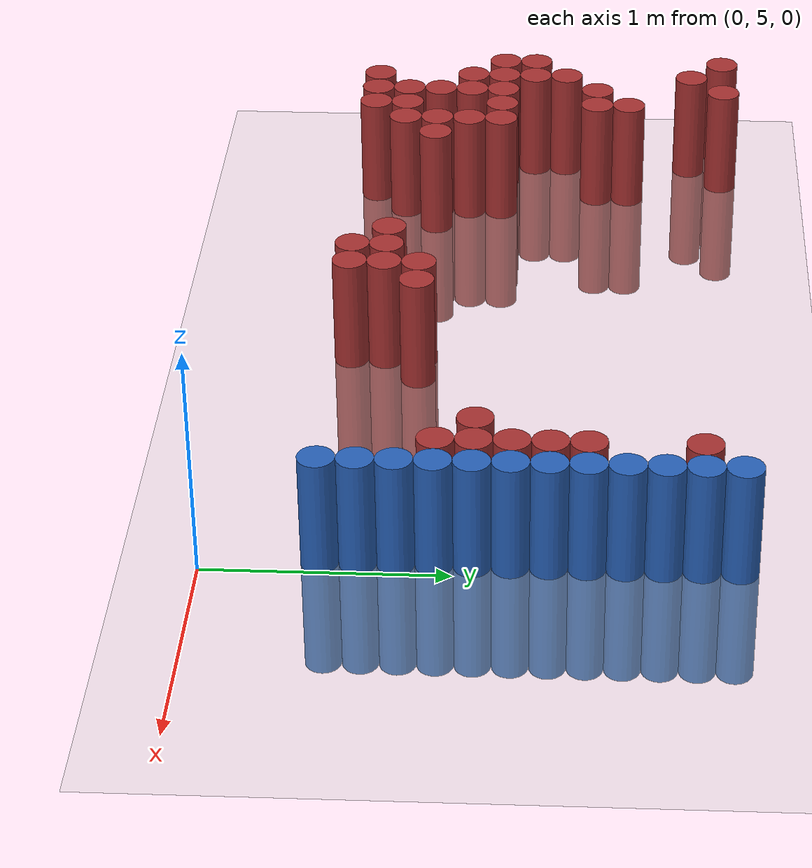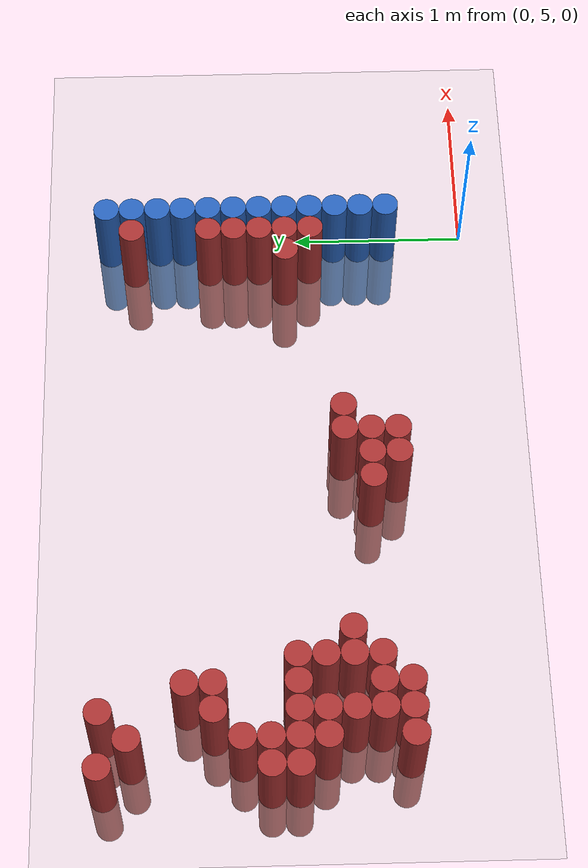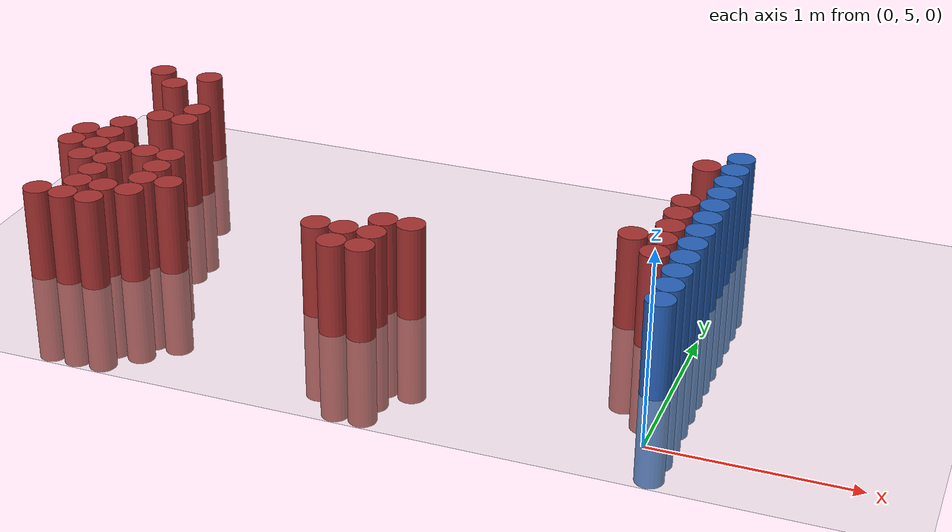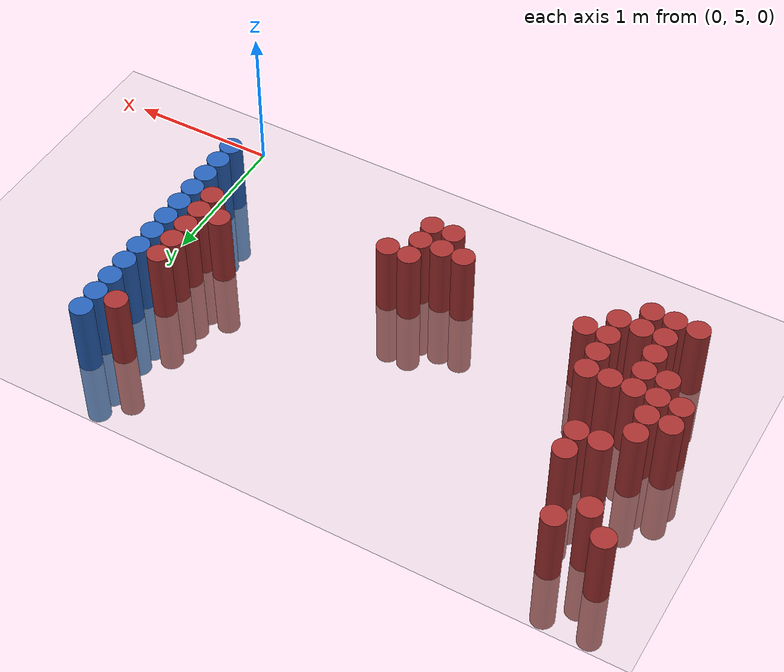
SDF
<sdf version="1.6">
 <world name="default">
  <model name="ground_plane">
   <static>1</static>
   <link name="link">
    <collision name="collision">
     <geometry><plane><normal>0 0 1</normal><size>100 100</size></plane></geometry>
     <surface><friction><ode><mu>100</mu><mu2>50</mu2></ode></friction></surface>
    </collision>
    <visual name="visual">
     <cast_shadows>0</cast_shadows>
     <geometry><plane><normal>0 0 1</normal><size>100 100</size></plane></geometry>
     <material>
      <script><uri>file://media/materials/scripts/gazebo.material</uri><name>Gazebo/Grey</name></script>
     </material>
    </visual>
   </link>
  </model>
  <model name="unit_cylinder_153">
   <static>1</static>
   <pose>-3.525000 6.075000 0.000000 0.000000 0.000000 0.000000</pose>
   <link name="link">
    <inertial>
     <mass>1</mass>
     <inertia><ixx>0.145833</ixx><ixy>0</ixy><ixz>0</ixz><iyy>0.145833</iyy><iyz>0</iyz><izz>0.125</izz></inertia>
    </inertial>
    <collision name="collision">
     <geometry><cylinder><radius>0.075000</radius><length>1</length></cylinder></geometry>
    </collision>
    <visual name="visual">
     <geometry><cylinder><radius>0.075000</radius><length>1</length></cylinder></geometry>
     <material>
      <ambient>0.648000 0.192000 0.192000 1</ambient>
      <diffuse>0.648000 0.192000 0.192000 1</diffuse>
     </material>
     <material>
      <script><name>Gazebo/Grey</name><uri>file://media/materials/scripts/gazebo.material</uri></script>
     </material>
    </visual>
   </link>
  </model>
  <model name="unit_cylinder_154">
   <static>1</static>
   <pose>-3.525000 6.225000 0.000000 0.000000 0.000000 0.000000</pose>
   <link name="link">
    <inertial>
     <mass>1</mass>
     <inertia><ixx>0.145833</ixx><ixy>0</ixy><ixz>0</ixz><iyy>0.145833</iyy><iyz>0</iyz><izz>0.125</izz></inertia>
    </inertial>
    <collision name="collision">
     <geometry><cylinder><radius>0.075000</radius><length>1</length></cylinder></geometry>
    </collision>
    <visual name="visual">
     <geometry><cylinder><radius>0.075000</radius><length>1</length></cylinder></geometry>
     <material>
      <ambient>0.648000 0.192000 0.192000 1</ambient>
      <diffuse>0.648000 0.192000 0.192000 1</diffuse>
     </material>
     <material>
      <script><name>Gazebo/Grey</name><uri>file://media/materials/scripts/gazebo.material</uri></script>
     </material>
    </visual>
   </link>
  </model>
  <model name="unit_cylinder_155">
   <static>1</static>
   <pose>-3.525000 7.125000 0.000000 0.000000 0.000000 0.000000</pose>
   <link name="link">
    <inertial>
     <mass>1</mass>
     <inertia><ixx>0.145833</ixx><ixy>0</ixy><ixz>0</ixz><iyy>0.145833</iyy><iyz>0</iyz><izz>0.125</izz></inertia>
    </inertial>
    <collision name="collision">
     <geometry><cylinder><radius>0.075000</radius><length>1</length></cylinder></geometry>
    </collision>
    <visual name="visual">
     <geometry><cylinder><radius>0.075000</radius><length>1</length></cylinder></geometry>
     <material>
      <ambient>0.648000 0.192000 0.192000 1</ambient>
      <diffuse>0.648000 0.192000 0.192000 1</diffuse>
     </material>
     <material>
      <script><name>Gazebo/Grey</name><uri>file://media/materials/scripts/gazebo.material</uri></script>
     </material>
    </visual>
   </link>
  </model>
  <model name="unit_cylinder_158">
   <static>1</static>
   <pose>-3.375000 5.475000 0.000000 0.000000 0.000000 0.000000</pose>
   <link name="link">
    <inertial>
     <mass>1</mass>
     <inertia><ixx>0.145833</ixx><ixy>0</ixy><ixz>0</ixz><iyy>0.145833</iyy><iyz>0</iyz><izz>0.125</izz></inertia>
    </inertial>
    <collision name="collision">
     <geometry><cylinder><radius>0.075000</radius><length>1</length></cylinder></geometry>
    </collision>
    <visual name="visual">
     <geometry><cylinder><radius>0.075000</radius><length>1</length></cylinder></geometry>
     <material>
      <ambient>0.648000 0.192000 0.192000 1</ambient>
      <diffuse>0.648000 0.192000 0.192000 1</diffuse>
     </material>
     <material>
      <script><name>Gazebo/Grey</name><uri>file://media/materials/scripts/gazebo.material</uri></script>
     </material>
    </visual>
   </link>
  </model>
  <model name="unit_cylinder_159">
   <static>1</static>
   <pose>-3.375000 5.925000 0.000000 0.000000 0.000000 0.000000</pose>
   <link name="link">
    <inertial>
     <mass>1</mass>
     <inertia><ixx>0.145833</ixx><ixy>0</ixy><ixz>0</ixz><iyy>0.145833</iyy><iyz>0</iyz><izz>0.125</izz></inertia>
    </inertial>
    <collision name="collision">
     <geometry><cylinder><radius>0.075000</radius><length>1</length></cylinder></geometry>
    </collision>
    <visual name="visual">
     <geometry><cylinder><radius>0.075000</radius><length>1</length></cylinder></geometry>
     <material>
      <ambient>0.648000 0.192000 0.192000 1</ambient>
      <diffuse>0.648000 0.192000 0.192000 1</diffuse>
     </material>
     <material>
      <script><name>Gazebo/Grey</name><uri>file://media/materials/scripts/gazebo.material</uri></script>
     </material>
    </visual>
   </link>
  </model>
  <model name="unit_cylinder_160">
   <static>1</static>
   <pose>-3.375000 6.075000 0.000000 0.000000 0.000000 0.000000</pose>
   <link name="link">
    <inertial>
     <mass>1</mass>
     <inertia><ixx>0.145833</ixx><ixy>0</ixy><ixz>0</ixz><iyy>0.145833</iyy><iyz>0</iyz><izz>0.125</izz></inertia>
    </inertial>
    <collision name="collision">
     <geometry><cylinder><radius>0.075000</radius><length>1</length></cylinder></geometry>
    </collision>
    <visual name="visual">
     <geometry><cylinder><radius>0.075000</radius><length>1</length></cylinder></geometry>
     <material>
      <ambient>0.648000 0.192000 0.192000 1</ambient>
      <diffuse>0.648000 0.192000 0.192000 1</diffuse>
     </material>
     <material>
      <script><name>Gazebo/Grey</name><uri>file://media/materials/scripts/gazebo.material</uri></script>
     </material>
    </visual>
   </link>
  </model>
  <model name="unit_cylinder_161">
   <static>1</static>
   <pose>-3.375000 6.225000 0.000000 0.000000 0.000000 0.000000</pose>
   <link name="link">
    <inertial>
     <mass>1</mass>
     <inertia><ixx>0.145833</ixx><ixy>0</ixy><ixz>0</ixz><iyy>0.145833</iyy><iyz>0</iyz><izz>0.125</izz></inertia>
    </inertial>
    <collision name="collision">
     <geometry><cylinder><radius>0.075000</radius><length>1</length></cylinder></geometry>
    </collision>
    <visual name="visual">
     <geometry><cylinder><radius>0.075000</radius><length>1</length></cylinder></geometry>
     <material>
      <ambient>0.648000 0.192000 0.192000 1</ambient>
      <diffuse>0.648000 0.192000 0.192000 1</diffuse>
     </material>
     <material>
      <script><name>Gazebo/Grey</name><uri>file://media/materials/scripts/gazebo.material</uri></script>
     </material>
    </visual>
   </link>
  </model>
  <model name="unit_cylinder_162">
   <static>1</static>
   <pose>-3.375000 6.375000 0.000000 0.000000 0.000000 0.000000</pose>
   <link name="link">
    <inertial>
     <mass>1</mass>
     <inertia><ixx>0.145833</ixx><ixy>0</ixy><ixz>0</ixz><iyy>0.145833</iyy><iyz>0</iyz><izz>0.125</izz></inertia>
    </inertial>
    <collision name="collision">
     <geometry><cylinder><radius>0.075000</radius><length>1</length></cylinder></geometry>
    </collision>
    <visual name="visual">
     <geometry><cylinder><radius>0.075000</radius><length>1</length></cylinder></geometry>
     <material>
      <ambient>0.648000 0.192000 0.192000 1</ambient>
      <diffuse>0.648000 0.192000 0.192000 1</diffuse>
     </material>
     <material>
      <script><name>Gazebo/Grey</name><uri>file://media/materials/scripts/gazebo.material</uri></script>
     </material>
    </visual>
   </link>
  </model>
  <model name="unit_cylinder_163">
   <static>1</static>
   <pose>-3.375000 6.975000 0.000000 0.000000 0.000000 0.000000</pose>
   <link name="link">
    <inertial>
     <mass>1</mass>
     <inertia><ixx>0.145833</ixx><ixy>0</ixy><ixz>0</ixz><iyy>0.145833</iyy><iyz>0</iyz><izz>0.125</izz></inertia>
    </inertial>
    <collision name="collision">
     <geometry><cylinder><radius>0.075000</radius><length>1</length></cylinder></geometry>
    </collision>
    <visual name="visual">
     <geometry><cylinder><radius>0.075000</radius><length>1</length></cylinder></geometry>
     <material>
      <ambient>0.648000 0.192000 0.192000 1</ambient>
      <diffuse>0.648000 0.192000 0.192000 1</diffuse>
     </material>
     <material>
      <script><name>Gazebo/Grey</name><uri>file://media/materials/scripts/gazebo.material</uri></script>
     </material>
    </visual>
   </link>
  </model>
  <model name="unit_cylinder_166">
   <static>1</static>
   <pose>-3.225000 5.475000 0.000000 0.000000 0.000000 0.000000</pose>
   <link name="link">
    <inertial>
     <mass>1</mass>
     <inertia><ixx>0.145833</ixx><ixy>0</ixy><ixz>0</ixz><iyy>0.145833</iyy><iyz>0</iyz><izz>0.125</izz></inertia>
    </inertial>
    <collision name="collision">
     <geometry><cylinder><radius>0.075000</radius><length>1</length></cylinder></geometry>
    </collision>
    <visual name="visual">
     <geometry><cylinder><radius>0.075000</radius><length>1</length></cylinder></geometry>
     <material>
      <ambient>0.648000 0.192000 0.192000 1</ambient>
      <diffuse>0.648000 0.192000 0.192000 1</diffuse>
     </material>
     <material>
      <script><name>Gazebo/Grey</name><uri>file://media/materials/scripts/gazebo.material</uri></script>
     </material>
    </visual>
   </link>
  </model>
  <model name="unit_cylinder_167">
   <static>1</static>
   <pose>-3.225000 5.625000 0.000000 0.000000 0.000000 0.000000</pose>
   <link name="link">
    <inertial>
     <mass>1</mass>
     <inertia><ixx>0.145833</ixx><ixy>0</ixy><ixz>0</ixz><iyy>0.145833</iyy><iyz>0</iyz><izz>0.125</izz></inertia>
    </inertial>
    <collision name="collision">
     <geometry><cylinder><radius>0.075000</radius><length>1</length></cylinder></geometry>
    </collision>
    <visual name="visual">
     <geometry><cylinder><radius>0.075000</radius><length>1</length></cylinder></geometry>
     <material>
      <ambient>0.648000 0.192000 0.192000 1</ambient>
      <diffuse>0.648000 0.192000 0.192000 1</diffuse>
     </material>
     <material>
      <script><name>Gazebo/Grey</name><uri>file://media/materials/scripts/gazebo.material</uri></script>
     </material>
    </visual>
   </link>
  </model>
  <model name="unit_cylinder_168">
   <static>1</static>
   <pose>-3.225000 5.775000 0.000000 0.000000 0.000000 0.000000</pose>
   <link name="link">
    <inertial>
     <mass>1</mass>
     <inertia><ixx>0.145833</ixx><ixy>0</ixy><ixz>0</ixz><iyy>0.145833</iyy><iyz>0</iyz><izz>0.125</izz></inertia>
    </inertial>
    <collision name="collision">
     <geometry><cylinder><radius>0.075000</radius><length>1</length></cylinder></geometry>
    </collision>
    <visual name="visual">
     <geometry><cylinder><radius>0.075000</radius><length>1</length></cylinder></geometry>
     <material>
      <ambient>0.648000 0.192000 0.192000 1</ambient>
      <diffuse>0.648000 0.192000 0.192000 1</diffuse>
     </material>
     <material>
      <script><name>Gazebo/Grey</name><uri>file://media/materials/scripts/gazebo.material</uri></script>
     </material>
    </visual>
   </link>
  </model>
  <model name="unit_cylinder_169">
   <static>1</static>
   <pose>-3.225000 5.925000 0.000000 0.000000 0.000000 0.000000</pose>
   <link name="link">
    <inertial>
     <mass>1</mass>
     <inertia><ixx>0.145833</ixx><ixy>0</ixy><ixz>0</ixz><iyy>0.145833</iyy><iyz>0</iyz><izz>0.125</izz></inertia>
    </inertial>
    <collision name="collision">
     <geometry><cylinder><radius>0.075000</radius><length>1</length></cylinder></geometry>
    </collision>
    <visual name="visual">
     <geometry><cylinder><radius>0.075000</radius><length>1</length></cylinder></geometry>
     <material>
      <ambient>0.648000 0.192000 0.192000 1</ambient>
      <diffuse>0.648000 0.192000 0.192000 1</diffuse>
     </material>
     <material>
      <script><name>Gazebo/Grey</name><uri>file://media/materials/scripts/gazebo.material</uri></script>
     </material>
    </visual>
   </link>
  </model>
  <model name="unit_cylinder_170">
   <static>1</static>
   <pose>-3.225000 6.075000 0.000000 0.000000 0.000000 0.000000</pose>
   <link name="link">
    <inertial>
     <mass>1</mass>
     <inertia><ixx>0.145833</ixx><ixy>0</ixy><ixz>0</ixz><iyy>0.145833</iyy><iyz>0</iyz><izz>0.125</izz></inertia>
    </inertial>
    <collision name="collision">
     <geometry><cylinder><radius>0.075000</radius><length>1</length></cylinder></geometry>
    </collision>
    <visual name="visual">
     <geometry><cylinder><radius>0.075000</radius><length>1</length></cylinder></geometry>
     <material>
      <ambient>0.648000 0.192000 0.192000 1</ambient>
      <diffuse>0.648000 0.192000 0.192000 1</diffuse>
     </material>
     <material>
      <script><name>Gazebo/Grey</name><uri>file://media/materials/scripts/gazebo.material</uri></script>
     </material>
    </visual>
   </link>
  </model>
  <model name="unit_cylinder_171">
   <static>1</static>
   <pose>-3.225000 6.525000 0.000000 0.000000 0.000000 0.000000</pose>
   <link name="link">
    <inertial>
     <mass>1</mass>
     <inertia><ixx>0.145833</ixx><ixy>0</ixy><ixz>0</ixz><iyy>0.145833</iyy><iyz>0</iyz><izz>0.125</izz></inertia>
    </inertial>
    <collision name="collision">
     <geometry><cylinder><radius>0.075000</radius><length>1</length></cylinder></geometry>
    </collision>
    <visual name="visual">
     <geometry><cylinder><radius>0.075000</radius><length>1</length></cylinder></geometry>
     <material>
      <ambient>0.648000 0.192000 0.192000 1</ambient>
      <diffuse>0.648000 0.192000 0.192000 1</diffuse>
     </material>
     <material>
      <script><name>Gazebo/Grey</name><uri>file://media/materials/scripts/gazebo.material</uri></script>
     </material>
    </visual>
   </link>
  </model>
  <model name="unit_cylinder_172">
   <static>1</static>
   <pose>-3.225000 7.125000 0.000000 0.000000 0.000000 0.000000</pose>
   <link name="link">
    <inertial>
     <mass>1</mass>
     <inertia><ixx>0.145833</ixx><ixy>0</ixy><ixz>0</ixz><iyy>0.145833</iyy><iyz>0</iyz><izz>0.125</izz></inertia>
    </inertial>
    <collision name="collision">
     <geometry><cylinder><radius>0.075000</radius><length>1</length></cylinder></geometry>
    </collision>
    <visual name="visual">
     <geometry><cylinder><radius>0.075000</radius><length>1</length></cylinder></geometry>
     <material>
      <ambient>0.648000 0.192000 0.192000 1</ambient>
      <diffuse>0.648000 0.192000 0.192000 1</diffuse>
     </material>
     <material>
      <script><name>Gazebo/Grey</name><uri>file://media/materials/scripts/gazebo.material</uri></script>
     </material>
    </visual>
   </link>
  </model>
  <model name="unit_cylinder_174">
   <static>1</static>
   <pose>-3.075000 5.475000 0.000000 0.000000 0.000000 0.000000</pose>
   <link name="link">
    <inertial>
     <mass>1</mass>
     <inertia><ixx>0.145833</ixx><ixy>0</ixy><ixz>0</ixz><iyy>0.145833</iyy><iyz>0</iyz><izz>0.125</izz></inertia>
    </inertial>
    <collision name="collision">
     <geometry><cylinder><radius>0.075000</radius><length>1</length></cylinder></geometry>
    </collision>
    <visual name="visual">
     <geometry><cylinder><radius>0.075000</radius><length>1</length></cylinder></geometry>
     <material>
      <ambient>0.648000 0.192000 0.192000 1</ambient>
      <diffuse>0.648000 0.192000 0.192000 1</diffuse>
     </material>
     <material>
      <script><name>Gazebo/Grey</name><uri>file://media/materials/scripts/gazebo.material</uri></script>
     </material>
    </visual>
   </link>
  </model>
  <model name="unit_cylinder_175">
   <static>1</static>
   <pose>-3.075000 5.625000 0.000000 0.000000 0.000000 0.000000</pose>
   <link name="link">
    <inertial>
     <mass>1</mass>
     <inertia><ixx>0.145833</ixx><ixy>0</ixy><ixz>0</ixz><iyy>0.145833</iyy><iyz>0</iyz><izz>0.125</izz></inertia>
    </inertial>
    <collision name="collision">
     <geometry><cylinder><radius>0.075000</radius><length>1</length></cylinder></geometry>
    </collision>
    <visual name="visual">
     <geometry><cylinder><radius>0.075000</radius><length>1</length></cylinder></geometry>
     <material>
      <ambient>0.648000 0.192000 0.192000 1</ambient>
      <diffuse>0.648000 0.192000 0.192000 1</diffuse>
     </material>
     <material>
      <script><name>Gazebo/Grey</name><uri>file://media/materials/scripts/gazebo.material</uri></script>
     </material>
    </visual>
   </link>
  </model>
  <model name="unit_cylinder_176">
   <static>1</static>
   <pose>-3.075000 6.075000 0.000000 0.000000 0.000000 0.000000</pose>
   <link name="link">
    <inertial>
     <mass>1</mass>
     <inertia><ixx>0.145833</ixx><ixy>0</ixy><ixz>0</ixz><iyy>0.145833</iyy><iyz>0</iyz><izz>0.125</izz></inertia>
    </inertial>
    <collision name="collision">
     <geometry><cylinder><radius>0.075000</radius><length>1</length></cylinder></geometry>
    </collision>
    <visual name="visual">
     <geometry><cylinder><radius>0.075000</radius><length>1</length></cylinder></geometry>
     <material>
      <ambient>0.648000 0.192000 0.192000 1</ambient>
      <diffuse>0.648000 0.192000 0.192000 1</diffuse>
     </material>
     <material>
      <script><name>Gazebo/Grey</name><uri>file://media/materials/scripts/gazebo.material</uri></script>
     </material>
    </visual>
   </link>
  </model>
  <model name="unit_cylinder_177">
   <static>1</static>
   <pose>-3.075000 6.525000 0.000000 0.000000 0.000000 0.000000</pose>
   <link name="link">
    <inertial>
     <mass>1</mass>
     <inertia><ixx>0.145833</ixx><ixy>0</ixy><ixz>0</ixz><iyy>0.145833</iyy><iyz>0</iyz><izz>0.125</izz></inertia>
    </inertial>
    <collision name="collision">
     <geometry><cylinder><radius>0.075000</radius><length>1</length></cylinder></geometry>
    </collision>
    <visual name="visual">
     <geometry><cylinder><radius>0.075000</radius><length>1</length></cylinder></geometry>
     <material>
      <ambient>0.648000 0.192000 0.192000 1</ambient>
      <diffuse>0.648000 0.192000 0.192000 1</diffuse>
     </material>
     <material>
      <script><name>Gazebo/Grey</name><uri>file://media/materials/scripts/gazebo.material</uri></script>
     </material>
    </visual>
   </link>
  </model>
  <model name="unit_cylinder_178">
   <static>1</static>
   <pose>-3.075000 6.675000 0.000000 0.000000 0.000000 0.000000</pose>
   <link name="link">
    <inertial>
     <mass>1</mass>
     <inertia><ixx>0.145833</ixx><ixy>0</ixy><ixz>0</ixz><iyy>0.145833</iyy><iyz>0</iyz><izz>0.125</izz></inertia>
    </inertial>
    <collision name="collision">
     <geometry><cylinder><radius>0.075000</radius><length>1</length></cylinder></geometry>
    </collision>
    <visual name="visual">
     <geometry><cylinder><radius>0.075000</radius><length>1</length></cylinder></geometry>
     <material>
      <ambient>0.648000 0.192000 0.192000 1</ambient>
      <diffuse>0.648000 0.192000 0.192000 1</diffuse>
     </material>
     <material>
      <script><name>Gazebo/Grey</name><uri>file://media/materials/scripts/gazebo.material</uri></script>
     </material>
    </visual>
   </link>
  </model>
  <model name="unit_cylinder_182">
   <static>1</static>
   <pose>-2.925000 5.625000 0.000000 0.000000 0.000000 0.000000</pose>
   <link name="link">
    <inertial>
     <mass>1</mass>
     <inertia><ixx>0.145833</ixx><ixy>0</ixy><ixz>0</ixz><iyy>0.145833</iyy><iyz>0</iyz><izz>0.125</izz></inertia>
    </inertial>
    <collision name="collision">
     <geometry><cylinder><radius>0.075000</radius><length>1</length></cylinder></geometry>
    </collision>
    <visual name="visual">
     <geometry><cylinder><radius>0.075000</radius><length>1</length></cylinder></geometry>
     <material>
      <ambient>0.648000 0.192000 0.192000 1</ambient>
      <diffuse>0.648000 0.192000 0.192000 1</diffuse>
     </material>
     <material>
      <script><name>Gazebo/Grey</name><uri>file://media/materials/scripts/gazebo.material</uri></script>
     </material>
    </visual>
   </link>
  </model>
  <model name="unit_cylinder_183">
   <static>1</static>
   <pose>-2.925000 5.775000 0.000000 0.000000 0.000000 0.000000</pose>
   <link name="link">
    <inertial>
     <mass>1</mass>
     <inertia><ixx>0.145833</ixx><ixy>0</ixy><ixz>0</ixz><iyy>0.145833</iyy><iyz>0</iyz><izz>0.125</izz></inertia>
    </inertial>
    <collision name="collision">
     <geometry><cylinder><radius>0.075000</radius><length>1</length></cylinder></geometry>
    </collision>
    <visual name="visual">
     <geometry><cylinder><radius>0.075000</radius><length>1</length></cylinder></geometry>
     <material>
      <ambient>0.648000 0.192000 0.192000 1</ambient>
      <diffuse>0.648000 0.192000 0.192000 1</diffuse>
     </material>
     <material>
      <script><name>Gazebo/Grey</name><uri>file://media/materials/scripts/gazebo.material</uri></script>
     </material>
    </visual>
   </link>
  </model>
  <model name="unit_cylinder_184">
   <static>1</static>
   <pose>-2.925000 5.925000 0.000000 0.000000 0.000000 0.000000</pose>
   <link name="link">
    <inertial>
     <mass>1</mass>
     <inertia><ixx>0.145833</ixx><ixy>0</ixy><ixz>0</ixz><iyy>0.145833</iyy><iyz>0</iyz><izz>0.125</izz></inertia>
    </inertial>
    <collision name="collision">
     <geometry><cylinder><radius>0.075000</radius><length>1</length></cylinder></geometry>
    </collision>
    <visual name="visual">
     <geometry><cylinder><radius>0.075000</radius><length>1</length></cylinder></geometry>
     <material>
      <ambient>0.648000 0.192000 0.192000 1</ambient>
      <diffuse>0.648000 0.192000 0.192000 1</diffuse>
     </material>
     <material>
      <script><name>Gazebo/Grey</name><uri>file://media/materials/scripts/gazebo.material</uri></script>
     </material>
    </visual>
   </link>
  </model>
  <model name="unit_cylinder_185">
   <static>1</static>
   <pose>-2.925000 6.075000 0.000000 0.000000 0.000000 0.000000</pose>
   <link name="link">
    <inertial>
     <mass>1</mass>
     <inertia><ixx>0.145833</ixx><ixy>0</ixy><ixz>0</ixz><iyy>0.145833</iyy><iyz>0</iyz><izz>0.125</izz></inertia>
    </inertial>
    <collision name="collision">
     <geometry><cylinder><radius>0.075000</radius><length>1</length></cylinder></geometry>
    </collision>
    <visual name="visual">
     <geometry><cylinder><radius>0.075000</radius><length>1</length></cylinder></geometry>
     <material>
      <ambient>0.648000 0.192000 0.192000 1</ambient>
      <diffuse>0.648000 0.192000 0.192000 1</diffuse>
     </material>
     <material>
      <script><name>Gazebo/Grey</name><uri>file://media/materials/scripts/gazebo.material</uri></script>
     </material>
    </visual>
   </link>
  </model>
  <model name="unit_cylinder_190">
   <static>1</static>
   <pose>-2.775000 5.775000 0.000000 0.000000 0.000000 0.000000</pose>
   <link name="link">
    <inertial>
     <mass>1</mass>
     <inertia><ixx>0.145833</ixx><ixy>0</ixy><ixz>0</ixz><iyy>0.145833</iyy><iyz>0</iyz><izz>0.125</izz></inertia>
    </inertial>
    <collision name="collision">
     <geometry><cylinder><radius>0.075000</radius><length>1</length></cylinder></geometry>
    </collision>
    <visual name="visual">
     <geometry><cylinder><radius>0.075000</radius><length>1</length></cylinder></geometry>
     <material>
      <ambient>0.648000 0.192000 0.192000 1</ambient>
      <diffuse>0.648000 0.192000 0.192000 1</diffuse>
     </material>
     <material>
      <script><name>Gazebo/Grey</name><uri>file://media/materials/scripts/gazebo.material</uri></script>
     </material>
    </visual>
   </link>
  </model>
  <model name="unit_cylinder_209">
   <static>1</static>
   <pose>-1.875000 5.625000 0.000000 0.000000 0.000000 0.000000</pose>
   <link name="link">
    <inertial>
     <mass>1</mass>
     <inertia><ixx>0.145833</ixx><ixy>0</ixy><ixz>0</ixz><iyy>0.145833</iyy><iyz>0</iyz><izz>0.125</izz></inertia>
    </inertial>
    <collision name="collision">
     <geometry><cylinder><radius>0.075000</radius><length>1</length></cylinder></geometry>
    </collision>
    <visual name="visual">
     <geometry><cylinder><radius>0.075000</radius><length>1</length></cylinder></geometry>
     <material>
      <ambient>0.648000 0.192000 0.192000 1</ambient>
      <diffuse>0.648000 0.192000 0.192000 1</diffuse>
     </material>
     <material>
      <script><name>Gazebo/Grey</name><uri>file://media/materials/scripts/gazebo.material</uri></script>
     </material>
    </visual>
   </link>
  </model>
  <model name="unit_cylinder_210">
   <static>1</static>
   <pose>-1.725000 5.475000 0.000000 0.000000 0.000000 0.000000</pose>
   <link name="link">
    <inertial>
     <mass>1</mass>
     <inertia><ixx>0.145833</ixx><ixy>0</ixy><ixz>0</ixz><iyy>0.145833</iyy><iyz>0</iyz><izz>0.125</izz></inertia>
    </inertial>
    <collision name="collision">
     <geometry><cylinder><radius>0.075000</radius><length>1</length></cylinder></geometry>
    </collision>
    <visual name="visual">
     <geometry><cylinder><radius>0.075000</radius><length>1</length></cylinder></geometry>
     <material>
      <ambient>0.648000 0.192000 0.192000 1</ambient>
      <diffuse>0.648000 0.192000 0.192000 1</diffuse>
     </material>
     <material>
      <script><name>Gazebo/Grey</name><uri>file://media/materials/scripts/gazebo.material</uri></script>
     </material>
    </visual>
   </link>
  </model>
  <model name="unit_cylinder_211">
   <static>1</static>
   <pose>-1.725000 5.625000 0.000000 0.000000 0.000000 0.000000</pose>
   <link name="link">
    <inertial>
     <mass>1</mass>
     <inertia><ixx>0.145833</ixx><ixy>0</ixy><ixz>0</ixz><iyy>0.145833</iyy><iyz>0</iyz><izz>0.125</izz></inertia>
    </inertial>
    <collision name="collision">
     <geometry><cylinder><radius>0.075000</radius><length>1</length></cylinder></geometry>
    </collision>
    <visual name="visual">
     <geometry><cylinder><radius>0.075000</radius><length>1</length></cylinder></geometry>
     <material>
      <ambient>0.648000 0.192000 0.192000 1</ambient>
      <diffuse>0.648000 0.192000 0.192000 1</diffuse>
     </material>
     <material>
      <script><name>Gazebo/Grey</name><uri>file://media/materials/scripts/gazebo.material</uri></script>
     </material>
    </visual>
   </link>
  </model>
  <model name="unit_cylinder_212">
   <static>1</static>
   <pose>-1.575000 5.475000 0.000000 0.000000 0.000000 0.000000</pose>
   <link name="link">
    <inertial>
     <mass>1</mass>
     <inertia><ixx>0.145833</ixx><ixy>0</ixy><ixz>0</ixz><iyy>0.145833</iyy><iyz>0</iyz><izz>0.125</izz></inertia>
    </inertial>
    <collision name="collision">
     <geometry><cylinder><radius>0.075000</radius><length>1</length></cylinder></geometry>
    </collision>
    <visual name="visual">
     <geometry><cylinder><radius>0.075000</radius><length>1</length></cylinder></geometry>
     <material>
      <ambient>0.648000 0.192000 0.192000 1</ambient>
      <diffuse>0.648000 0.192000 0.192000 1</diffuse>
     </material>
     <material>
      <script><name>Gazebo/Grey</name><uri>file://media/materials/scripts/gazebo.material</uri></script>
     </material>
    </visual>
   </link>
  </model>
  <model name="unit_cylinder_213">
   <static>1</static>
   <pose>-1.575000 5.625000 0.000000 0.000000 0.000000 0.000000</pose>
   <link name="link">
    <inertial>
     <mass>1</mass>
     <inertia><ixx>0.145833</ixx><ixy>0</ixy><ixz>0</ixz><iyy>0.145833</iyy><iyz>0</iyz><izz>0.125</izz></inertia>
    </inertial>
    <collision name="collision">
     <geometry><cylinder><radius>0.075000</radius><length>1</length></cylinder></geometry>
    </collision>
    <visual name="visual">
     <geometry><cylinder><radius>0.075000</radius><length>1</length></cylinder></geometry>
     <material>
      <ambient>0.648000 0.192000 0.192000 1</ambient>
      <diffuse>0.648000 0.192000 0.192000 1</diffuse>
     </material>
     <material>
      <script><name>Gazebo/Grey</name><uri>file://media/materials/scripts/gazebo.material</uri></script>
     </material>
    </visual>
   </link>
  </model>
  <model name="unit_cylinder_214">
   <static>1</static>
   <pose>-1.575000 5.775000 0.000000 0.000000 0.000000 0.000000</pose>
   <link name="link">
    <inertial>
     <mass>1</mass>
     <inertia><ixx>0.145833</ixx><ixy>0</ixy><ixz>0</ixz><iyy>0.145833</iyy><iyz>0</iyz><izz>0.125</izz></inertia>
    </inertial>
    <collision name="collision">
     <geometry><cylinder><radius>0.075000</radius><length>1</length></cylinder></geometry>
    </collision>
    <visual name="visual">
     <geometry><cylinder><radius>0.075000</radius><length>1</length></cylinder></geometry>
     <material>
      <ambient>0.648000 0.192000 0.192000 1</ambient>
      <diffuse>0.648000 0.192000 0.192000 1</diffuse>
     </material>
     <material>
      <script><name>Gazebo/Grey</name><uri>file://media/materials/scripts/gazebo.material</uri></script>
     </material>
    </visual>
   </link>
  </model>
  <model name="unit_cylinder_217">
   <static>1</static>
   <pose>-1.425000 5.775000 0.000000 0.000000 0.000000 0.000000</pose>
   <link name="link">
    <inertial>
     <mass>1</mass>
     <inertia><ixx>0.145833</ixx><ixy>0</ixy><ixz>0</ixz><iyy>0.145833</iyy><iyz>0</iyz><izz>0.125</izz></inertia>
    </inertial>
    <collision name="collision">
     <geometry><cylinder><radius>0.075000</radius><length>1</length></cylinder></geometry>
    </collision>
    <visual name="visual">
     <geometry><cylinder><radius>0.075000</radius><length>1</length></cylinder></geometry>
     <material>
      <ambient>0.648000 0.192000 0.192000 1</ambient>
      <diffuse>0.648000 0.192000 0.192000 1</diffuse>
     </material>
     <material>
      <script><name>Gazebo/Grey</name><uri>file://media/materials/scripts/gazebo.material</uri></script>
     </material>
    </visual>
   </link>
  </model>
  <model name="unit_cylinder_222">
   <static>1</static>
   <pose>-0.375000 6.075000 0.000000 0.000000 0.000000 0.000000</pose>
   <link name="link">
    <inertial>
     <mass>1</mass>
     <inertia><ixx>0.145833</ixx><ixy>0</ixy><ixz>0</ixz><iyy>0.145833</iyy><iyz>0</iyz><izz>0.125</izz></inertia>
    </inertial>
    <collision name="collision">
     <geometry><cylinder><radius>0.075000</radius><length>1</length></cylinder></geometry>
    </collision>
    <visual name="visual">
     <geometry><cylinder><radius>0.075000</radius><length>1</length></cylinder></geometry>
     <material>
      <ambient>0.648000 0.192000 0.192000 1</ambient>
      <diffuse>0.648000 0.192000 0.192000 1</diffuse>
     </material>
     <material>
      <script><name>Gazebo/Grey</name><uri>file://media/materials/scripts/gazebo.material</uri></script>
     </material>
    </visual>
   </link>
  </model>
  <model name="unit_cylinder_223">
   <static>1</static>
   <pose>-0.225000 5.925000 0.000000 0.000000 0.000000 0.000000</pose>
   <link name="link">
    <inertial>
     <mass>1</mass>
     <inertia><ixx>0.145833</ixx><ixy>0</ixy><ixz>0</ixz><iyy>0.145833</iyy><iyz>0</iyz><izz>0.125</izz></inertia>
    </inertial>
    <collision name="collision">
     <geometry><cylinder><radius>0.075000</radius><length>1</length></cylinder></geometry>
    </collision>
    <visual name="visual">
     <geometry><cylinder><radius>0.075000</radius><length>1</length></cylinder></geometry>
     <material>
      <ambient>0.648000 0.192000 0.192000 1</ambient>
      <diffuse>0.648000 0.192000 0.192000 1</diffuse>
     </material>
     <material>
      <script><name>Gazebo/Grey</name><uri>file://media/materials/scripts/gazebo.material</uri></script>
     </material>
    </visual>
   </link>
  </model>
  <model name="unit_cylinder_224">
   <static>1</static>
   <pose>-0.225000 6.075000 0.000000 0.000000 0.000000 0.000000</pose>
   <link name="link">
    <inertial>
     <mass>1</mass>
     <inertia><ixx>0.145833</ixx><ixy>0</ixy><ixz>0</ixz><iyy>0.145833</iyy><iyz>0</iyz><izz>0.125</izz></inertia>
    </inertial>
    <collision name="collision">
     <geometry><cylinder><radius>0.075000</radius><length>1</length></cylinder></geometry>
    </collision>
    <visual name="visual">
     <geometry><cylinder><radius>0.075000</radius><length>1</length></cylinder></geometry>
     <material>
      <ambient>0.648000 0.192000 0.192000 1</ambient>
      <diffuse>0.648000 0.192000 0.192000 1</diffuse>
     </material>
     <material>
      <script><name>Gazebo/Grey</name><uri>file://media/materials/scripts/gazebo.material</uri></script>
     </material>
    </visual>
   </link>
  </model>
  <model name="unit_cylinder_225">
   <static>1</static>
   <pose>-0.225000 6.225000 0.000000 0.000000 0.000000 0.000000</pose>
   <link name="link">
    <inertial>
     <mass>1</mass>
     <inertia><ixx>0.145833</ixx><ixy>0</ixy><ixz>0</ixz><iyy>0.145833</iyy><iyz>0</iyz><izz>0.125</izz></inertia>
    </inertial>
    <collision name="collision">
     <geometry><cylinder><radius>0.075000</radius><length>1</length></cylinder></geometry>
    </collision>
    <visual name="visual">
     <geometry><cylinder><radius>0.075000</radius><length>1</length></cylinder></geometry>
     <material>
      <ambient>0.648000 0.192000 0.192000 1</ambient>
      <diffuse>0.648000 0.192000 0.192000 1</diffuse>
     </material>
     <material>
      <script><name>Gazebo/Grey</name><uri>file://media/materials/scripts/gazebo.material</uri></script>
     </material>
    </visual>
   </link>
  </model>
  <model name="unit_cylinder_226">
   <static>1</static>
   <pose>-0.225000 6.375000 0.000000 0.000000 0.000000 0.000000</pose>
   <link name="link">
    <inertial>
     <mass>1</mass>
     <inertia><ixx>0.145833</ixx><ixy>0</ixy><ixz>0</ixz><iyy>0.145833</iyy><iyz>0</iyz><izz>0.125</izz></inertia>
    </inertial>
    <collision name="collision">
     <geometry><cylinder><radius>0.075000</radius><length>1</length></cylinder></geometry>
    </collision>
    <visual name="visual">
     <geometry><cylinder><radius>0.075000</radius><length>1</length></cylinder></geometry>
     <material>
      <ambient>0.648000 0.192000 0.192000 1</ambient>
      <diffuse>0.648000 0.192000 0.192000 1</diffuse>
     </material>
     <material>
      <script><name>Gazebo/Grey</name><uri>file://media/materials/scripts/gazebo.material</uri></script>
     </material>
    </visual>
   </link>
  </model>
  <model name="unit_cylinder_227">
   <static>1</static>
   <pose>-0.225000 6.525000 0.000000 0.000000 0.000000 0.000000</pose>
   <link name="link">
    <inertial>
     <mass>1</mass>
     <inertia><ixx>0.145833</ixx><ixy>0</ixy><ixz>0</ixz><iyy>0.145833</iyy><iyz>0</iyz><izz>0.125</izz></inertia>
    </inertial>
    <collision name="collision">
     <geometry><cylinder><radius>0.075000</radius><length>1</length></cylinder></geometry>
    </collision>
    <visual name="visual">
     <geometry><cylinder><radius>0.075000</radius><length>1</length></cylinder></geometry>
     <material>
      <ambient>0.648000 0.192000 0.192000 1</ambient>
      <diffuse>0.648000 0.192000 0.192000 1</diffuse>
     </material>
     <material>
      <script><name>Gazebo/Grey</name><uri>file://media/materials/scripts/gazebo.material</uri></script>
     </material>
    </visual>
   </link>
  </model>
  <model name="unit_cylinder_228">
   <static>1</static>
   <pose>-0.225000 6.975000 0.000000 0.000000 0.000000 0.000000</pose>
   <link name="link">
    <inertial>
     <mass>1</mass>
     <inertia><ixx>0.145833</ixx><ixy>0</ixy><ixz>0</ixz><iyy>0.145833</iyy><iyz>0</iyz><izz>0.125</izz></inertia>
    </inertial>
    <collision name="collision">
     <geometry><cylinder><radius>0.075000</radius><length>1</length></cylinder></geometry>
    </collision>
    <visual name="visual">
     <geometry><cylinder><radius>0.075000</radius><length>1</length></cylinder></geometry>
     <material>
      <ambient>0.648000 0.192000 0.192000 1</ambient>
      <diffuse>0.648000 0.192000 0.192000 1</diffuse>
     </material>
     <material>
      <script><name>Gazebo/Grey</name><uri>file://media/materials/scripts/gazebo.material</uri></script>
     </material>
    </visual>
   </link>
  </model>
  <model name="unit_cylinder_234">
   <static>1</static>
   <pose>-0.075000 5.475000 0.000000 0.000000 0.000000 0.000000</pose>
   <link name="link">
    <inertial>
     <mass>1</mass>
     <inertia><ixx>0.145833</ixx><ixy>0</ixy><ixz>0</ixz><iyy>0.145833</iyy><iyz>0</iyz><izz>0.125</izz></inertia>
    </inertial>
    <collision name="collision">
     <geometry><cylinder><radius>0.075000</radius><length>1</length></cylinder></geometry>
    </collision>
    <visual name="visual">
     <geometry><cylinder><radius>0.075000</radius><length>1</length></cylinder></geometry>
     <material>
      <ambient>0.152000 0.379000 0.720000 1</ambient>
      <diffuse>0.152000 0.379000 0.720000 1</diffuse>
     </material>
     <material>
      <script><name>Gazebo/Grey</name><uri>file://media/materials/scripts/gazebo.material</uri></script>
     </material>
    </visual>
   </link>
  </model>
  <model name="unit_cylinder_235">
   <static>1</static>
   <pose>-0.075000 5.625000 0.000000 0.000000 0.000000 0.000000</pose>
   <link name="link">
    <inertial>
     <mass>1</mass>
     <inertia><ixx>0.145833</ixx><ixy>0</ixy><ixz>0</ixz><iyy>0.145833</iyy><iyz>0</iyz><izz>0.125</izz></inertia>
    </inertial>
    <collision name="collision">
     <geometry><cylinder><radius>0.075000</radius><length>1</length></cylinder></geometry>
    </collision>
    <visual name="visual">
     <geometry><cylinder><radius>0.075000</radius><length>1</length></cylinder></geometry>
     <material>
      <ambient>0.152000 0.379000 0.720000 1</ambient>
      <diffuse>0.152000 0.379000 0.720000 1</diffuse>
     </material>
     <material>
      <script><name>Gazebo/Grey</name><uri>file://media/materials/scripts/gazebo.material</uri></script>
     </material>
    </visual>
   </link>
  </model>
  <model name="unit_cylinder_236">
   <static>1</static>
   <pose>-0.075000 5.775000 0.000000 0.000000 0.000000 0.000000</pose>
   <link name="link">
    <inertial>
     <mass>1</mass>
     <inertia><ixx>0.145833</ixx><ixy>0</ixy><ixz>0</ixz><iyy>0.145833</iyy><iyz>0</iyz><izz>0.125</izz></inertia>
    </inertial>
    <collision name="collision">
     <geometry><cylinder><radius>0.075000</radius><length>1</length></cylinder></geometry>
    </collision>
    <visual name="visual">
     <geometry><cylinder><radius>0.075000</radius><length>1</length></cylinder></geometry>
     <material>
      <ambient>0.152000 0.379000 0.720000 1</ambient>
      <diffuse>0.152000 0.379000 0.720000 1</diffuse>
     </material>
     <material>
      <script><name>Gazebo/Grey</name><uri>file://media/materials/scripts/gazebo.material</uri></script>
     </material>
    </visual>
   </link>
  </model>
  <model name="unit_cylinder_237">
   <static>1</static>
   <pose>-0.075000 5.925000 0.000000 0.000000 0.000000 0.000000</pose>
   <link name="link">
    <inertial>
     <mass>1</mass>
     <inertia><ixx>0.145833</ixx><ixy>0</ixy><ixz>0</ixz><iyy>0.145833</iyy><iyz>0</iyz><izz>0.125</izz></inertia>
    </inertial>
    <collision name="collision">
     <geometry><cylinder><radius>0.075000</radius><length>1</length></cylinder></geometry>
    </collision>
    <visual name="visual">
     <geometry><cylinder><radius>0.075000</radius><length>1</length></cylinder></geometry>
     <material>
      <ambient>0.152000 0.379000 0.720000 1</ambient>
      <diffuse>0.152000 0.379000 0.720000 1</diffuse>
     </material>
     <material>
      <script><name>Gazebo/Grey</name><uri>file://media/materials/scripts/gazebo.material</uri></script>
     </material>
    </visual>
   </link>
  </model>
  <model name="unit_cylinder_238">
   <static>1</static>
   <pose>-0.075000 6.075000 0.000000 0.000000 0.000000 0.000000</pose>
   <link name="link">
    <inertial>
     <mass>1</mass>
     <inertia><ixx>0.145833</ixx><ixy>0</ixy><ixz>0</ixz><iyy>0.145833</iyy><iyz>0</iyz><izz>0.125</izz></inertia>
    </inertial>
    <collision name="collision">
     <geometry><cylinder><radius>0.075000</radius><length>1</length></cylinder></geometry>
    </collision>
    <visual name="visual">
     <geometry><cylinder><radius>0.075000</radius><length>1</length></cylinder></geometry>
     <material>
      <ambient>0.152000 0.379000 0.720000 1</ambient>
      <diffuse>0.152000 0.379000 0.720000 1</diffuse>
     </material>
     <material>
      <script><name>Gazebo/Grey</name><uri>file://media/materials/scripts/gazebo.material</uri></script>
     </material>
    </visual>
   </link>
  </model>
  <model name="unit_cylinder_239">
   <static>1</static>
   <pose>-0.075000 6.225000 0.000000 0.000000 0.000000 0.000000</pose>
   <link name="link">
    <inertial>
     <mass>1</mass>
     <inertia><ixx>0.145833</ixx><ixy>0</ixy><ixz>0</ixz><iyy>0.145833</iyy><iyz>0</iyz><izz>0.125</izz></inertia>
    </inertial>
    <collision name="collision">
     <geometry><cylinder><radius>0.075000</radius><length>1</length></cylinder></geometry>
    </collision>
    <visual name="visual">
     <geometry><cylinder><radius>0.075000</radius><length>1</length></cylinder></geometry>
     <material>
      <ambient>0.152000 0.379000 0.720000 1</ambient>
      <diffuse>0.152000 0.379000 0.720000 1</diffuse>
     </material>
     <material>
      <script><name>Gazebo/Grey</name><uri>file://media/materials/scripts/gazebo.material</uri></script>
     </material>
    </visual>
   </link>
  </model>
  <model name="unit_cylinder_240">
   <static>1</static>
   <pose>-0.075000 6.375000 0.000000 0.000000 0.000000 0.000000</pose>
   <link name="link">
    <inertial>
     <mass>1</mass>
     <inertia><ixx>0.145833</ixx><ixy>0</ixy><ixz>0</ixz><iyy>0.145833</iyy><iyz>0</iyz><izz>0.125</izz></inertia>
    </inertial>
    <collision name="collision">
     <geometry><cylinder><radius>0.075000</radius><length>1</length></cylinder></geometry>
    </collision>
    <visual name="visual">
     <geometry><cylinder><radius>0.075000</radius><length>1</length></cylinder></geometry>
     <material>
      <ambient>0.152000 0.379000 0.720000 1</ambient>
      <diffuse>0.152000 0.379000 0.720000 1</diffuse>
     </material>
     <material>
      <script><name>Gazebo/Grey</name><uri>file://media/materials/scripts/gazebo.material</uri></script>
     </material>
    </visual>
   </link>
  </model>
  <model name="unit_cylinder_241">
   <static>1</static>
   <pose>-0.075000 6.525000 0.000000 0.000000 0.000000 0.000000</pose>
   <link name="link">
    <inertial>
     <mass>1</mass>
     <inertia><ixx>0.145833</ixx><ixy>0</ixy><ixz>0</ixz><iyy>0.145833</iyy><iyz>0</iyz><izz>0.125</izz></inertia>
    </inertial>
    <collision name="collision">
     <geometry><cylinder><radius>0.075000</radius><length>1</length></cylinder></geometry>
    </collision>
    <visual name="visual">
     <geometry><cylinder><radius>0.075000</radius><length>1</length></cylinder></geometry>
     <material>
      <ambient>0.152000 0.379000 0.720000 1</ambient>
      <diffuse>0.152000 0.379000 0.720000 1</diffuse>
     </material>
     <material>
      <script><name>Gazebo/Grey</name><uri>file://media/materials/scripts/gazebo.material</uri></script>
     </material>
    </visual>
   </link>
  </model>
  <model name="unit_cylinder_242">
   <static>1</static>
   <pose>-0.075000 6.675000 0.000000 0.000000 0.000000 0.000000</pose>
   <link name="link">
    <inertial>
     <mass>1</mass>
     <inertia><ixx>0.145833</ixx><ixy>0</ixy><ixz>0</ixz><iyy>0.145833</iyy><iyz>0</iyz><izz>0.125</izz></inertia>
    </inertial>
    <collision name="collision">
     <geometry><cylinder><radius>0.075000</radius><length>1</length></cylinder></geometry>
    </collision>
    <visual name="visual">
     <geometry><cylinder><radius>0.075000</radius><length>1</length></cylinder></geometry>
     <material>
      <ambient>0.152000 0.379000 0.720000 1</ambient>
      <diffuse>0.152000 0.379000 0.720000 1</diffuse>
     </material>
     <material>
      <script><name>Gazebo/Grey</name><uri>file://media/materials/scripts/gazebo.material</uri></script>
     </material>
    </visual>
   </link>
  </model>
  <model name="unit_cylinder_243">
   <static>1</static>
   <pose>-0.075000 6.825000 0.000000 0.000000 0.000000 0.000000</pose>
   <link name="link">
    <inertial>
     <mass>1</mass>
     <inertia><ixx>0.145833</ixx><ixy>0</ixy><ixz>0</ixz><iyy>0.145833</iyy><iyz>0</iyz><izz>0.125</izz></inertia>
    </inertial>
    <collision name="collision">
     <geometry><cylinder><radius>0.075000</radius><length>1</length></cylinder></geometry>
    </collision>
    <visual name="visual">
     <geometry><cylinder><radius>0.075000</radius><length>1</length></cylinder></geometry>
     <material>
      <ambient>0.152000 0.379000 0.720000 1</ambient>
      <diffuse>0.152000 0.379000 0.720000 1</diffuse>
     </material>
     <material>
      <script><name>Gazebo/Grey</name><uri>file://media/materials/scripts/gazebo.material</uri></script>
     </material>
    </visual>
   </link>
  </model>
  <model name="unit_cylinder_244">
   <static>1</static>
   <pose>-0.075000 6.975000 0.000000 0.000000 0.000000 0.000000</pose>
   <link name="link">
    <inertial>
     <mass>1</mass>
     <inertia><ixx>0.145833</ixx><ixy>0</ixy><ixz>0</ixz><iyy>0.145833</iyy><iyz>0</iyz><izz>0.125</izz></inertia>
    </inertial>
    <collision name="collision">
     <geometry><cylinder><radius>0.075000</radius><length>1</length></cylinder></geometry>
    </collision>
    <visual name="visual">
     <geometry><cylinder><radius>0.075000</radius><length>1</length></cylinder></geometry>
     <material>
      <ambient>0.152000 0.379000 0.720000 1</ambient>
      <diffuse>0.152000 0.379000 0.720000 1</diffuse>
     </material>
     <material>
      <script><name>Gazebo/Grey</name><uri>file://media/materials/scripts/gazebo.material</uri></script>
     </material>
    </visual>
   </link>
  </model>
  <model name="unit_cylinder_245">
   <static>1</static>
   <pose>-0.075000 7.125000 0.000000 0.000000 0.000000 0.000000</pose>
   <link name="link">
    <inertial>
     <mass>1</mass>
     <inertia><ixx>0.145833</ixx><ixy>0</ixy><ixz>0</ixz><iyy>0.145833</iyy><iyz>0</iyz><izz>0.125</izz></inertia>
    </inertial>
    <collision name="collision">
     <geometry><cylinder><radius>0.075000</radius><length>1</length></cylinder></geometry>
    </collision>
    <visual name="visual">
     <geometry><cylinder><radius>0.075000</radius><length>1</length></cylinder></geometry>
     <material>
      <ambient>0.152000 0.379000 0.720000 1</ambient>
      <diffuse>0.152000 0.379000 0.720000 1</diffuse>
     </material>
     <material>
      <script><name>Gazebo/Grey</name><uri>file://media/materials/scripts/gazebo.material</uri></script>
     </material>
    </visual>
   </link>
  </model>
 </world>
</sdf>
